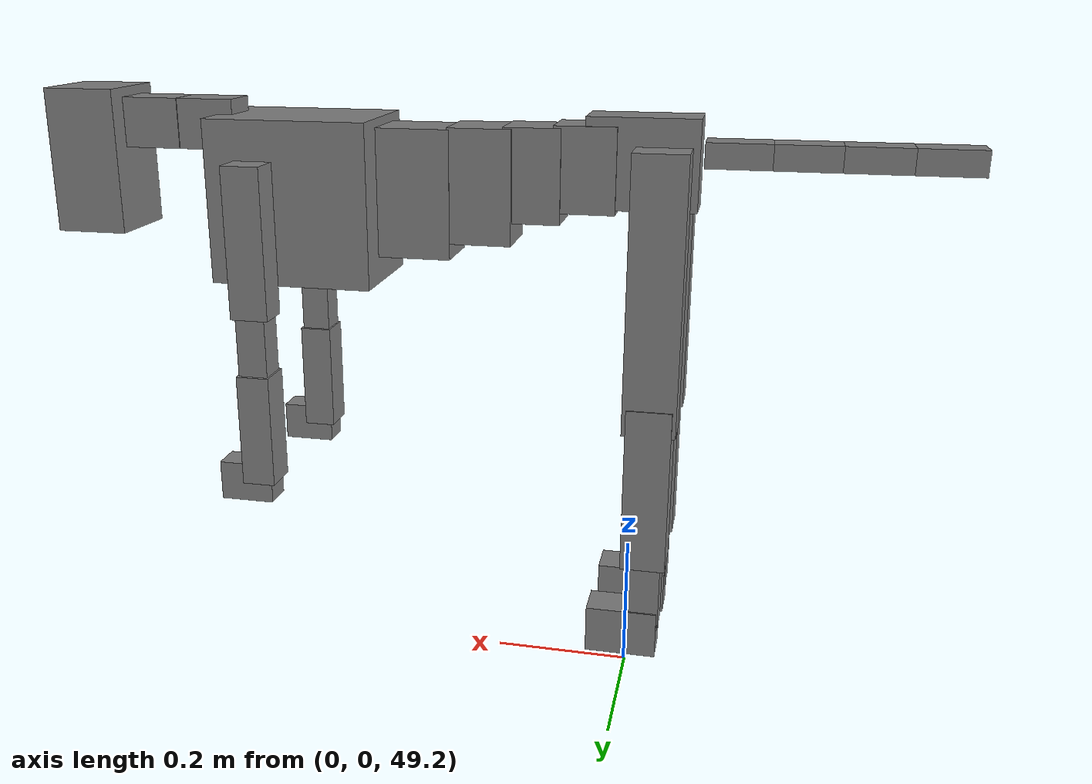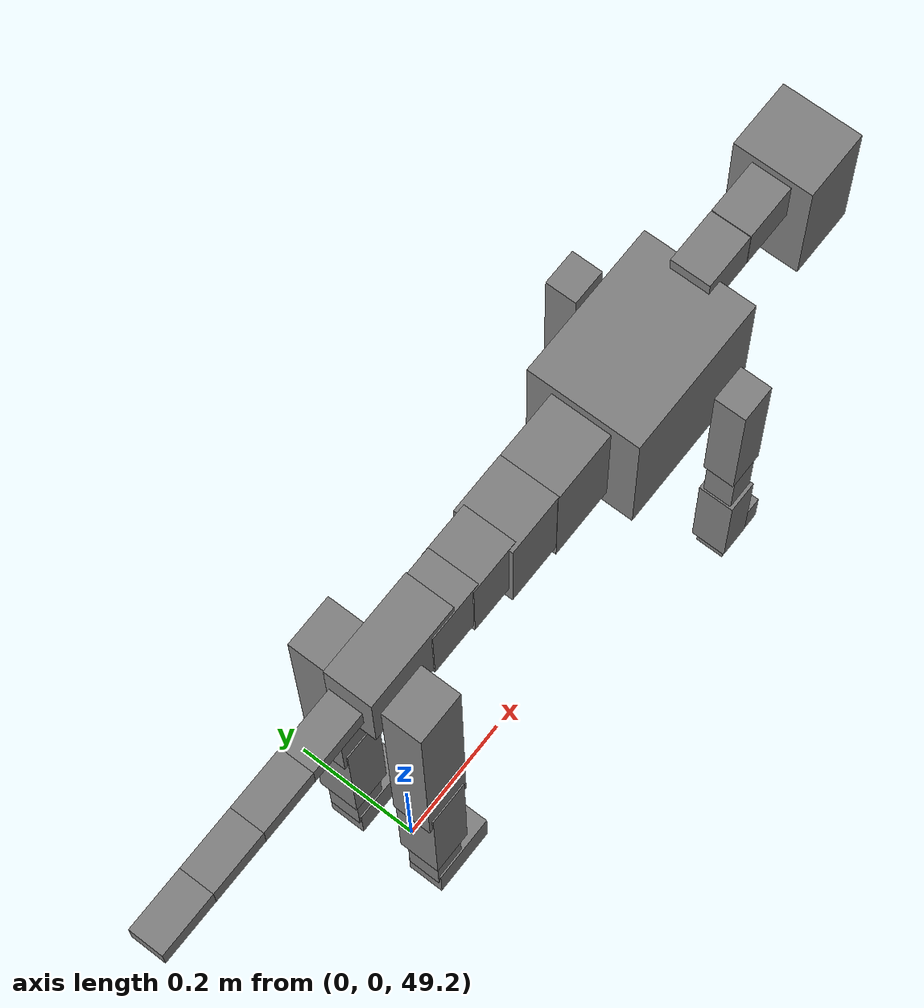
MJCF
<mujoco model="dog">

    <default>
        <joint armature="0.02" stiffness="1" damping="0.2" limited="true"/>
        <geom condim="3" friction="1 0.05 0.05" margin="0.01"/>
        <motor ctrllimited="true" ctrlrange="-1.0 1.0" forcelimited="true" gear="50"/>
    </default>

    <compiler inertiafromgeom="true" angle="radian"/>

    <option timestep="0.016" iterations="50" tolerance="1e-10" solver="Newton" jacobian="dense" cone="pyramidal"/>

    <size nconmax="20000" njmax="60000" nstack="5000000"/>
    <visual>
        <map force="0.1" zfar="30"/>
        <rgba haze="0.15 0.25 0.35 1"/>
        <quality shadowsize="2048"/>
        <global offwidth="800" offheight="800"/>
    </visual>

    <asset>
        <texture type="skybox" builtin="gradient" rgb1="0.3 0.5 0.7" rgb2="0 0 0" width="512" height="512"/>
        <texture name="texplane" type="2d" builtin="checker" rgb1=".2 .3 .4" rgb2=".1 0.15 0.2" width="512" height="512"
                 mark="cross" markrgb=".8 .8 .8"/>
        <texture name="texgeom" type="cube" builtin="flat" mark="cross" width="127" height="1278" rgb1="0.8 0.6 0.4"
                 rgb2="0.8 0.6 0.4" markrgb="1 1 1" random="0.01"/>

        <material name="matplane" reflectance="0.3" texture="texplane" texrepeat="1 1" texuniform="true"/>
        <material name="matgeom" texture="texgeom" texuniform="true" rgba="0.8 0.6 .4 1"/>
    </asset>

    <worldbody>
        <geom name="floor" pos="0 0 0" size="0 0 .25" type="plane" material="matplane" condim="3"/>

        <light directional="false" diffuse=".2 .2 .2" specular="0 0 0" pos="0 0 5" dir="0 0 -1" castshadow="false"/>
        <light mode="targetbodycom" target="torso" directional="false" diffuse=".8 .8 .8" specular="0.3 0.3 0.3"
               pos="0 0 4.0" dir="0 0 -1"/>

        <body name="root" pos="0 0 50">
            <freejoint name="root_1"/>
            <geom type="box" pos="0 0 -0.02" size="0.0774  0.0358  0.063" density="2030"/>

            <body name="spine1" pos="0.054 0 0">
                <joint name="spine1_y" axis="0 1 0" range="0 0.7" limited="true"/>
                <geom type="box" pos="0.02375 0 -0.03" size="0.04375  0.0375  0.05985" density="2030"/>

                <body name="spine2" pos="0.0612 0 0">
                    <joint name="spine2_y" axis="0 1 0" range="-0.15 0.15" limited="true"/>
                    <geom type="box" pos="0.03555  0  -0.04" size="0.04055  0.039  0.06615" density="2030"/>

                    <body name="spine3" pos="0.0730 0 0">
                        <joint name="spine3_y" axis="0 1 0" range="-0.15 0.15" limited="true"/>
                        <geom type="box" pos="0.03555  0  -0.057" size="0.04555  0.0445  0.081" density="2030"/>

                        <body name="spine4" pos="0.0780 0 0">
                            <joint name="spine4_y" axis="0 1 0" range="-0.15 0.15" limited="true"/>
                            <geom type="box" pos="0.05265  0  -0.07" size="0.05265  0.045  0.09135" density="2030"/>

                            <body name="torso" pos="0.1082 0 0">
                                <joint name="torso_y" axis="0 1 0" range="-0.15 0.15" limited="true"/>
                                <geom type="box" pos="0.11925  0  -0.085" size="0.11925  0.085  0.11745"
                                      density="2030"/>

                                <body name="neck1" pos="0.2160  0   0.0180">
                                    <joint name="neck1_y" axis="0 1 0" range="-1.2  -1" limited="true"/>
                                    <geom type="box" pos="0.0423  0  0" size="0.0423  0.03  0.036" density="2325"/>

                                    <body name="neck2" pos="0.0853  0  0">
                                        <joint name="neck2_y" axis="0 1 0" range="0.1  0" limited="true"/>
                                        <geom type="box" pos="0.0423  0  0" size="0.0423  0.03  0.036" density="2325"/>

                                        <body name="head" pos="0.0853  0  0">
                                            <joint name="head_y" axis="0 1 0" range="-0.3  -0.2" limited="true"/>
                                            <geom type="box" pos="0.0531  0  -0.055" size="0.0531  0.06  0.1044"
                                                  density="4030"/>

                                        </body>
                                    </body>
                                </body>

                                <body name="front_shoulder" pos="0.156  0   -0.0480">
                                    <joint name="front_shoulder_y" axis="0 1 0" range="-1 1.5" limited="true"/>
                                    <geom type="box" pos="0 0.13 -0.0812" size="0.0276  0.0236  0.1078" density="1158"/>
                                    <geom type="box" pos="0 -0.13 -0.0812" size="0.0276  0.0236  0.1078"
                                          density="1158"/>

                                    <body name="front_elbow" pos="0  0  -0.1623">
                                        <joint name="front_elbow_y" axis="0 1 0" range="-2 0" limited="true"/>
                                        <geom type="box" pos="0 0.13 -0.0617" size="0.0214  0.0219  0.0617"
                                              density="1081"/>
                                        <geom type="box" pos="0 -0.13 -0.0617" size="0.0214  0.0219  0.0617"
                                              density="1081"/>

                                        <body name="front_wrist" pos="0  0  -0.1234">
                                            <joint name="front_wrist_y" axis="0 1 0" range="-0.2 0" limited="true"/>
                                            <geom type="box" pos="0 0.13 -0.0688" size="0.0241  0.0268  0.0820"
                                                  density="1664"/>
                                            <geom type="box" pos="0 -0.13 -0.0688" size="0.0241  0.0268  0.0820"
                                                  density="1664"/>

                                            <body name="front_finger_end" pos="0  0  -0.1376">
                                                <joint name="front_finger_y" axis="0 1 0" range="-0.4 1"
                                                       limited="true"/>
                                                <geom type="box" pos="0.0215  0.13  -0.0138"
                                                      size="0.0394  0.0215  0.0288" density="1515"/>
                                                <geom type="box" pos="0.0215  -0.13  -0.0138"
                                                      size="0.0394  0.0215  0.0288" density="1515"/>

                                            </body>

                                        </body>
                                    </body>
                                </body>

                            </body>
                        </body>
                    </body>
                </body>
            </body>

            <body name="back_hip" pos="-0.03 0 -0.018">
                <joint name="back_hip_y" axis="0 1 0" range="-1.5 0.3" limited="true"/>
                <geom type="box" pos="0 0.07 -0.1729" size="0.0379  0.0297  0.1957" density="1154"/>
                <geom type="box" pos="0 -0.07 -0.1729" size="0.0379  0.0297  0.1957" density="1154"/>

                <body name="back_knee" pos="0  0  -0.3458">
                    <joint name="back_knee_y" axis="0 1 0" range="0 2.8" limited="true"/>
                    <geom type="box" pos="0 0.07 -0.1061" size="0.0323  0.0318  0.1216" density="1227"/>
                    <geom type="box" pos="0 -0.07 -0.1061" size="0.0323  0.0318  0.1216" density="1227"/>

                    <body name="back_ankle" pos="0  0  -0.2122">
                        <joint name="back_ankle_y" axis="0 1 0" range="-2.2 0" limited="true"/>
                        <geom type="box" pos="0 0.07 -0.0512" size="0.0255  0.0255  0.0624" density="1284"/>
                        <geom type="box" pos="0 -0.07 -0.0512" size="0.0255  0.0255  0.0624" density="1284"/>

                        <body name="back_toe_end" pos="0  0  -0.1024">
                            <joint name="back_toe_y" axis="0 1 0" range="-0.4 1" limited="true"/>
                            <geom type="box" pos="0.0281  0.07  -0.0198" size="0.0516  0.0281  0.0348" density="1515"/>
                            <geom type="box" pos="0.0281  -0.07  -0.0198" size="0.0516  0.0281  0.0348" density="1515"/>

                        </body>
                    </body>
                </body>
            </body>

            <body name="tail1" pos="-0.074 0 -0.006">
                <joint name="tail1_y" axis="0 1 0" range="-0.2 0.2" limited="true"/>
                <geom type="box" pos="-0.0536  0  0" size="0.045  0.025  0.0175" density="1587"/>

                <body name="tail2" pos="-0.09 0 0">
                    <joint name="tail2_y" axis="0 1 0" range="-0.2 0.2" limited="true"/>
                    <geom type="box" pos="-0.0536  0  0" size="0.045  0.025  0.0175" density="1587"/>

                    <body name="tail3" pos="-0.09 0 0">
                        <joint name="tail3_y" axis="0 1 0" range="-0.2 0.2" limited="true"/>
                        <geom type="box" pos="-0.0536  0  0" size="0.045  0.025  0.0175" density="1587"/>

                        <body name="tail4" pos="-0.09 0 0">
                            <joint name="tail4_y" axis="0 1 0" range="-0.2 0.2" limited="true"/>
                            <geom type="box" pos="-0.0536  0  0" size="0.045  0.025  0.0175" density="1587"/>

                        </body>
                    </body>
                </body>
            </body>
        </body>
    </worldbody>

    <actuator>
        <motor joint="spine1_y" forcerange="-150 150     "/>
        <motor joint="spine2_y" forcerange="-150 150     "/>
        <motor joint="spine3_y" forcerange="-150 150     "/>
        <motor joint="spine4_y" forcerange="-150 150     "/>
        <motor joint="torso_y" forcerange="-150 150     "/>
        <motor joint="neck1_y" forcerange="-100 100       "/>
        <motor joint="neck2_y" forcerange="-100 100       "/>
        <motor joint="head_y" forcerange="-150 150       "/>
        <motor joint="front_shoulder_y" forcerange="-134.74 122.55"/>
        <motor joint="front_elbow_y" forcerange="-139.15 120.00"/>
        <motor joint="front_wrist_y" forcerange="-94.09 120.06"/>
        <motor joint="front_finger_y" forcerange="-52.07 22.51"/>
        <motor joint="back_hip_y" forcerange="-299.98 296.29"/>
        <motor joint="back_knee_y" forcerange="-296.31 366.09"/>
        <motor joint="back_angle_y" forcerange="-73.84 234.83"/>
        <motor joint="back_toe_y" forcerange="-111.77 33.22"/>
        <motor joint="tail1_y" forcerange="-50 50     "/>
        <motor joint="tail2_y" forcerange="-50 50     "/>
        <motor joint="tail3_y" forcerange="-50 50     "/>
        <motor joint="tail4_y" forcerange="-50 50     "/>
    </actuator>
</mujoco>
